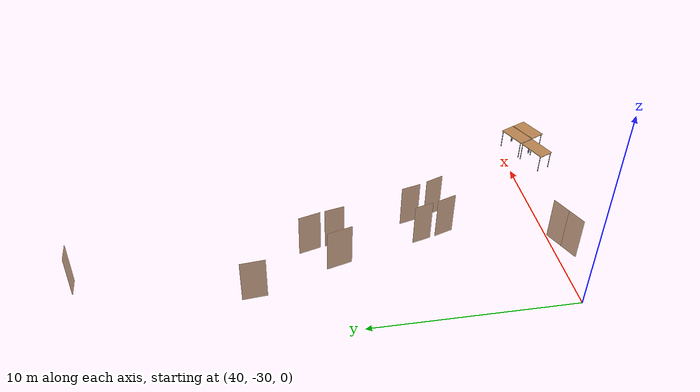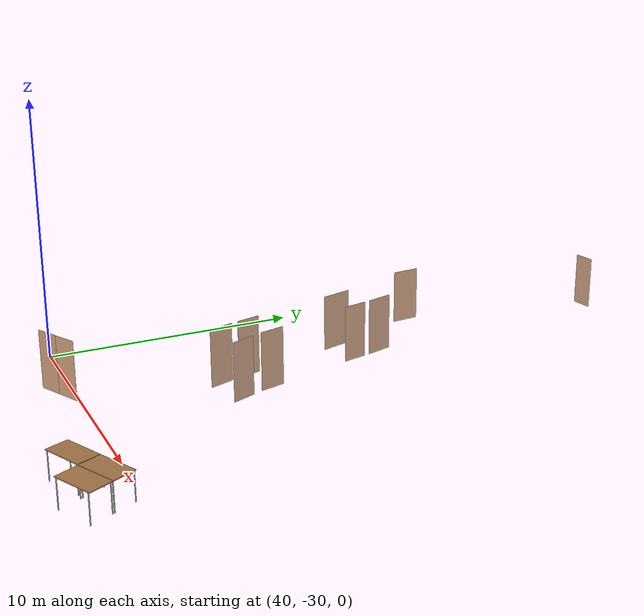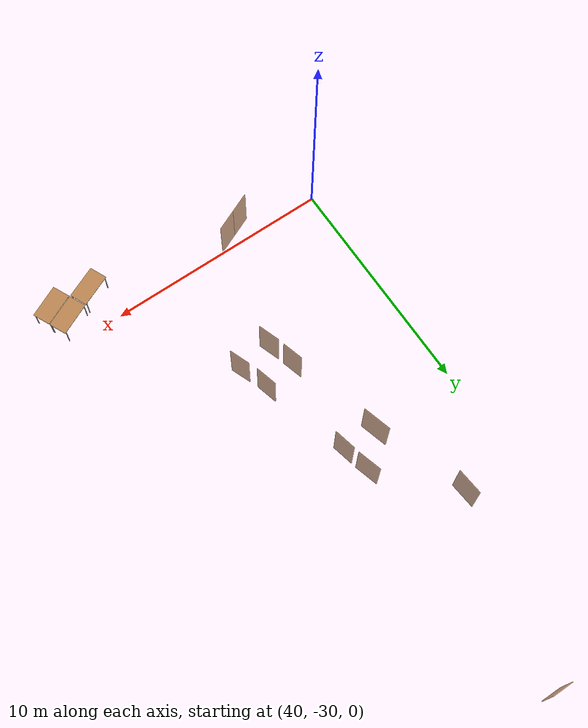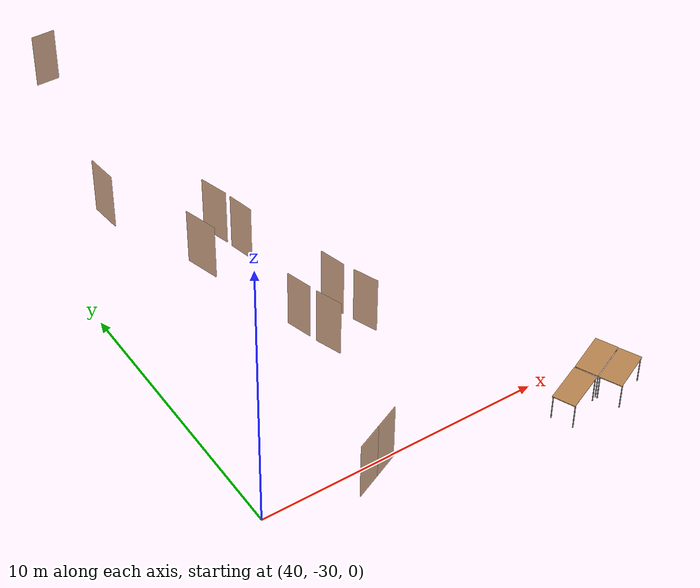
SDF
<sdf version="1.6">
 <world name="world">
  <model name="OpenRobotics/Table_4">
   <static>1</static>
   <link name="link">
    <collision name="surface">
     <pose>0 0 1 0 -0 0</pose>
     <geometry><box><size>1.5 0.8 0.03</size></box></geometry>
     <surface><friction><ode><mu>0.6</mu><mu2>0.6</mu2></ode></friction></surface>
    </collision>
    <visual name="visual1">
     <pose>0 0 1 0 -0 0</pose>
     <geometry><box><size>1.5 0.8 0.03</size></box></geometry>
     <material>
      <script><uri>file://media/materials/scripts/gazebo.material</uri><name>Gazebo/Wood</name></script>
     </material>
    </visual>
    <collision name="front_left_leg">
     <pose>0.68 0.38 0.5 0 -0 0</pose>
     <geometry><cylinder><radius>0.02</radius><length>1</length></cylinder></geometry>
    </collision>
    <visual name="front_left_leg">
     <pose>0.68 0.38 0.5 0 -0 0</pose>
     <geometry><cylinder><radius>0.02</radius><length>1</length></cylinder></geometry>
     <material>
      <script><uri>file://media/materials/scripts/gazebo.material</uri><name>Gazebo/Grey</name></script>
     </material>
    </visual>
    <collision name="front_right_leg">
     <pose>0.68 -0.38 0.5 0 -0 0</pose>
     <geometry><cylinder><radius>0.02</radius><length>1</length></cylinder></geometry>
    </collision>
    <visual name="front_right_leg">
     <pose>0.68 -0.38 0.5 0 -0 0</pose>
     <geometry><cylinder><radius>0.02</radius><length>1</length></cylinder></geometry>
     <material>
      <script><uri>file://media/materials/scripts/gazebo.material</uri><name>Gazebo/Grey</name></script>
     </material>
    </visual>
    <collision name="back_right_leg">
     <pose>-0.68 -0.38 0.5 0 -0 0</pose>
     <geometry><cylinder><radius>0.02</radius><length>1</length></cylinder></geometry>
    </collision>
    <visual name="back_right_leg">
     <pose>-0.68 -0.38 0.5 0 -0 0</pose>
     <geometry><cylinder><radius>0.02</radius><length>1</length></cylinder></geometry>
     <material>
      <script><uri>file://media/materials/scripts/gazebo.material</uri><name>Gazebo/Grey</name></script>
     </material>
    </visual>
    <collision name="back_left_leg">
     <pose>-0.68 0.38 0.5 0 -0 0</pose>
     <geometry><cylinder><radius>0.02</radius><length>1</length></cylinder></geometry>
    </collision>
    <visual name="back_left_leg">
     <pose>-0.68 0.38 0.5 0 -0 0</pose>
     <geometry><cylinder><radius>0.02</radius><length>1</length></cylinder></geometry>
     <material>
      <script><uri>file://media/materials/scripts/gazebo.material</uri><name>Gazebo/Grey</name></script>
     </material>
    </visual>
   </link>
   <pose>50.5168 -31.5278 0 0 -0 0.4167</pose>
  </model>
  <model name="OpenRobotics/Table_5">
   <static>1</static>
   <link name="link">
    <collision name="surface">
     <pose>0 0 1 0 -0 0</pose>
     <geometry><box><size>1.5 0.8 0.03</size></box></geometry>
     <surface><friction><ode><mu>0.6</mu><mu2>0.6</mu2></ode></friction></surface>
    </collision>
    <visual name="visual1">
     <pose>0 0 1 0 -0 0</pose>
     <geometry><box><size>1.5 0.8 0.03</size></box></geometry>
     <material>
      <script><uri>file://media/materials/scripts/gazebo.material</uri><name>Gazebo/Wood</name></script>
     </material>
    </visual>
    <collision name="front_left_leg">
     <pose>0.68 0.38 0.5 0 -0 0</pose>
     <geometry><cylinder><radius>0.02</radius><length>1</length></cylinder></geometry>
    </collision>
    <visual name="front_left_leg">
     <pose>0.68 0.38 0.5 0 -0 0</pose>
     <geometry><cylinder><radius>0.02</radius><length>1</length></cylinder></geometry>
     <material>
      <script><uri>file://media/materials/scripts/gazebo.material</uri><name>Gazebo/Grey</name></script>
     </material>
    </visual>
    <collision name="front_right_leg">
     <pose>0.68 -0.38 0.5 0 -0 0</pose>
     <geometry><cylinder><radius>0.02</radius><length>1</length></cylinder></geometry>
    </collision>
    <visual name="front_right_leg">
     <pose>0.68 -0.38 0.5 0 -0 0</pose>
     <geometry><cylinder><radius>0.02</radius><length>1</length></cylinder></geometry>
     <material>
      <script><uri>file://media/materials/scripts/gazebo.material</uri><name>Gazebo/Grey</name></script>
     </material>
    </visual>
    <collision name="back_right_leg">
     <pose>-0.68 -0.38 0.5 0 -0 0</pose>
     <geometry><cylinder><radius>0.02</radius><length>1</length></cylinder></geometry>
    </collision>
    <visual name="back_right_leg">
     <pose>-0.68 -0.38 0.5 0 -0 0</pose>
     <geometry><cylinder><radius>0.02</radius><length>1</length></cylinder></geometry>
     <material>
      <script><uri>file://media/materials/scripts/gazebo.material</uri><name>Gazebo/Grey</name></script>
     </material>
    </visual>
    <collision name="back_left_leg">
     <pose>-0.68 0.38 0.5 0 -0 0</pose>
     <geometry><cylinder><radius>0.02</radius><length>1</length></cylinder></geometry>
    </collision>
    <visual name="back_left_leg">
     <pose>-0.68 0.38 0.5 0 -0 0</pose>
     <geometry><cylinder><radius>0.02</radius><length>1</length></cylinder></geometry>
     <material>
      <script><uri>file://media/materials/scripts/gazebo.material</uri><name>Gazebo/Grey</name></script>
     </material>
    </visual>
   </link>
   <pose>51.9247 -30.8942 0 0 -0 0.4347</pose>
  </model>
  <model name="OpenRobotics/Table_6">
   <static>1</static>
   <link name="link">
    <collision name="surface">
     <pose>0 0 1 0 -0 0</pose>
     <geometry><box><size>1.5 0.8 0.03</size></box></geometry>
     <surface><friction><ode><mu>0.6</mu><mu2>0.6</mu2></ode></friction></surface>
    </collision>
    <visual name="visual1">
     <pose>0 0 1 0 -0 0</pose>
     <geometry><box><size>1.5 0.8 0.03</size></box></geometry>
     <material>
      <script><uri>file://media/materials/scripts/gazebo.material</uri><name>Gazebo/Wood</name></script>
     </material>
    </visual>
    <collision name="front_left_leg">
     <pose>0.68 0.38 0.5 0 -0 0</pose>
     <geometry><cylinder><radius>0.02</radius><length>1</length></cylinder></geometry>
    </collision>
    <visual name="front_left_leg">
     <pose>0.68 0.38 0.5 0 -0 0</pose>
     <geometry><cylinder><radius>0.02</radius><length>1</length></cylinder></geometry>
     <material>
      <script><uri>file://media/materials/scripts/gazebo.material</uri><name>Gazebo/Grey</name></script>
     </material>
    </visual>
    <collision name="front_right_leg">
     <pose>0.68 -0.38 0.5 0 -0 0</pose>
     <geometry><cylinder><radius>0.02</radius><length>1</length></cylinder></geometry>
    </collision>
    <visual name="front_right_leg">
     <pose>0.68 -0.38 0.5 0 -0 0</pose>
     <geometry><cylinder><radius>0.02</radius><length>1</length></cylinder></geometry>
     <material>
      <script><uri>file://media/materials/scripts/gazebo.material</uri><name>Gazebo/Grey</name></script>
     </material>
    </visual>
    <collision name="back_right_leg">
     <pose>-0.68 -0.38 0.5 0 -0 0</pose>
     <geometry><cylinder><radius>0.02</radius><length>1</length></cylinder></geometry>
    </collision>
    <visual name="back_right_leg">
     <pose>-0.68 -0.38 0.5 0 -0 0</pose>
     <geometry><cylinder><radius>0.02</radius><length>1</length></cylinder></geometry>
     <material>
      <script><uri>file://media/materials/scripts/gazebo.material</uri><name>Gazebo/Grey</name></script>
     </material>
    </visual>
    <collision name="back_left_leg">
     <pose>-0.68 0.38 0.5 0 -0 0</pose>
     <geometry><cylinder><radius>0.02</radius><length>1</length></cylinder></geometry>
    </collision>
    <visual name="back_left_leg">
     <pose>-0.68 0.38 0.5 0 -0 0</pose>
     <geometry><cylinder><radius>0.02</radius><length>1</length></cylinder></geometry>
     <material>
      <script><uri>file://media/materials/scripts/gazebo.material</uri><name>Gazebo/Grey</name></script>
     </material>
    </visual>
   </link>
   <pose>52.2667 -31.6485 0 0 -0 0.4389</pose>
  </model>
  <model name="D12">
   <pose>47.2222 -24.83 0 0 -0 -1.20677</pose>
   <link name="right">
    <pose>0 0 1.11 0 -0 0</pose>
    <visual name="right_visual">
     <geometry><box><size>0.929981 0.03 2.2</size></box></geometry>
     <material><ambient>0.5 0.25 0 0.6</ambient><diffuse>0.5 0.25 0 0.6</diffuse></material>
    </visual>
    <collision name="right_collision">
     <geometry><box><size>0.929981 0.03 2.2</size></box></geometry>
     <surface><contact><collide_bitmask>2</collide_bitmask></contact></surface>
    </collision>
    <inertial>
     <mass>50</mass>
     <inertia><ixx>20.1704</ixx><iyy>23.7703</iyy><izz>3.60736</izz><ixy>0</ixy><ixz>0</ixz><iyz>0</iyz></inertia>
    </inertial>
   </link>
   <joint name="right_joint" type="revolute">
    <parent>world</parent>
    <child>right</child>
    <axis>
     <xyz>0 0 1</xyz>
     <limit><lower>0</lower><upper>1.57</upper></limit>
     <dynamics><spring_reference>0</spring_reference><spring_stiffness>0</spring_stiffness></dynamics>
     <use_parent_model_frame>0</use_parent_model_frame>
    </axis>
    <pose>0.469991 0 0 0 -0 0</pose>
   </joint>
   <plugin name="door_D12" filename="libdoor.so">
    <v_max_door>0.5</v_max_door>
    <a_max_door>0.3</a_max_door>
    <a_nom_door>0.15</a_nom_door>
    <dx_min_door>0.01</dx_min_door>
    <f_max_door>500.0</f_max_door>
    <door name="D12" type="SwingDoor" left_joint_name="empty_joint" right_joint_name="right_joint"/>
   </plugin>
  </model>
  <model name="D13">
   <pose>46.7861 -23.541 -0 0 0 -1.31886</pose>
   <link name="right">
    <pose>0 0 1.11 0 -0 0</pose>
    <visual name="right_visual">
     <geometry><box><size>0.981892 0.03 2.2</size></box></geometry>
     <material><ambient>0.5 0.25 0 0.6</ambient><diffuse>0.5 0.25 0 0.6</diffuse></material>
    </visual>
    <collision name="right_collision">
     <geometry><box><size>0.981892 0.03 2.2</size></box></geometry>
     <surface><contact><collide_bitmask>2</collide_bitmask></contact></surface>
    </collision>
    <inertial>
     <mass>50</mass>
     <inertia><ixx>20.1704</ixx><iyy>24.1838</iyy><izz>4.02088</izz><ixy>0</ixy><ixz>0</ixz><iyz>0</iyz></inertia>
    </inertial>
   </link>
   <joint name="right_joint" type="revolute">
    <parent>world</parent>
    <child>right</child>
    <axis>
     <xyz>0 0 -1</xyz>
     <limit><lower>0</lower><upper>1.57</upper></limit>
     <dynamics><spring_reference>0</spring_reference><spring_stiffness>0</spring_stiffness></dynamics>
     <use_parent_model_frame>0</use_parent_model_frame>
    </axis>
    <pose>0.495946 0 0 0 -0 0</pose>
   </joint>
   <plugin name="door_D13" filename="libdoor.so">
    <v_max_door>0.5</v_max_door>
    <a_max_door>0.3</a_max_door>
    <a_nom_door>0.15</a_nom_door>
    <dx_min_door>0.01</dx_min_door>
    <f_max_door>500.0</f_max_door>
    <door name="D13" type="SwingDoor" left_joint_name="empty_joint" right_joint_name="right_joint"/>
   </plugin>
  </model>
  <model name="D14">
   <pose>45.7058 -19.5679 0 0 0 -1.3544</pose>
   <link name="right">
    <pose>0 0 1.11 0 -0 0</pose>
    <visual name="right_visual">
     <geometry><box><size>0.986867 0.03 2.2</size></box></geometry>
     <material><ambient>0.5 0.25 0 0.6</ambient><diffuse>0.5 0.25 0 0.6</diffuse></material>
    </visual>
    <collision name="right_collision">
     <geometry><box><size>0.986867 0.03 2.2</size></box></geometry>
     <surface><contact><collide_bitmask>2</collide_bitmask></contact></surface>
    </collision>
    <inertial>
     <mass>50</mass>
     <inertia><ixx>20.1704</ixx><iyy>24.2246</iyy><izz>4.0617</izz><ixy>0</ixy><ixz>0</ixz><iyz>0</iyz></inertia>
    </inertial>
   </link>
   <joint name="right_joint" type="revolute">
    <parent>world</parent>
    <child>right</child>
    <axis>
     <xyz>0 0 1</xyz>
     <limit><lower>0</lower><upper>1.57</upper></limit>
     <dynamics><spring_reference>0</spring_reference><spring_stiffness>0</spring_stiffness></dynamics>
     <use_parent_model_frame>0</use_parent_model_frame>
    </axis>
    <pose>0.498434 0 0 0 -0 0</pose>
   </joint>
   <plugin name="door_D14" filename="libdoor.so">
    <v_max_door>0.5</v_max_door>
    <a_max_door>0.3</a_max_door>
    <a_nom_door>0.15</a_nom_door>
    <dx_min_door>0.01</dx_min_door>
    <f_max_door>500.0</f_max_door>
    <door name="D14" type="SwingDoor" left_joint_name="empty_joint" right_joint_name="right_joint"/>
   </plugin>
  </model>
  <model name="D15">
   <pose>45.4079 -18.3231 0 0 -0 -1.29664</pose>
   <link name="right">
    <pose>0 0 1.11 0 -0 0</pose>
    <visual name="right_visual">
     <geometry><box><size>1.10514 0.03 2.2</size></box></geometry>
     <material><ambient>0.5 0.25 0 0.6</ambient><diffuse>0.5 0.25 0 0.6</diffuse></material>
    </visual>
    <collision name="right_collision">
     <geometry><box><size>1.10514 0.03 2.2</size></box></geometry>
     <surface><contact><collide_bitmask>2</collide_bitmask></contact></surface>
    </collision>
    <inertial>
     <mass>50</mass>
     <inertia><ixx>20.1704</ixx><iyy>25.2556</iyy><izz>5.09265</izz><ixy>0</ixy><ixz>0</ixz><iyz>0</iyz></inertia>
    </inertial>
   </link>
   <joint name="right_joint" type="revolute">
    <parent>world</parent>
    <child>right</child>
    <axis>
     <xyz>0 0 -1</xyz>
     <limit><lower>0</lower><upper>1.57</upper></limit>
     <dynamics><spring_reference>0</spring_reference><spring_stiffness>0</spring_stiffness></dynamics>
     <use_parent_model_frame>0</use_parent_model_frame>
    </axis>
    <pose>0.55757 0 0 0 -0 0</pose>
   </joint>
   <plugin name="door_D15" filename="libdoor.so">
    <v_max_door>0.5</v_max_door>
    <a_max_door>0.3</a_max_door>
    <a_nom_door>0.15</a_nom_door>
    <dx_min_door>0.01</dx_min_door>
    <f_max_door>500.0</f_max_door>
    <door name="D15" type="SwingDoor" left_joint_name="empty_joint" right_joint_name="right_joint"/>
   </plugin>
  </model>
  <model name="D16">
   <pose>42.6679 -15.4188 0 -0 -0 -1.47952</pose>
   <link name="right">
    <pose>0 0 1.11 0 -0 0</pose>
    <visual name="right_visual">
     <geometry><box><size>1.1816 0.03 2.2</size></box></geometry>
     <material><ambient>0.5 0.25 0 0.6</ambient><diffuse>0.5 0.25 0 0.6</diffuse></material>
    </visual>
    <collision name="right_collision">
     <geometry><box><size>1.1816 0.03 2.2</size></box></geometry>
     <surface><contact><collide_bitmask>2</collide_bitmask></contact></surface>
    </collision>
    <inertial>
     <mass>50</mass>
     <inertia><ixx>20.1704</ixx><iyy>25.9841</iyy><izz>5.82114</izz><ixy>0</ixy><ixz>0</ixz><iyz>0</iyz></inertia>
    </inertial>
   </link>
   <joint name="right_joint" type="revolute">
    <parent>world</parent>
    <child>right</child>
    <axis>
     <xyz>0 0 1</xyz>
     <limit><lower>0</lower><upper>1.57</upper></limit>
     <dynamics><spring_reference>0</spring_reference><spring_stiffness>0</spring_stiffness></dynamics>
     <use_parent_model_frame>0</use_parent_model_frame>
    </axis>
    <pose>0.595799 0 0 0 -0 0</pose>
   </joint>
   <plugin name="door_D16" filename="libdoor.so">
    <v_max_door>0.5</v_max_door>
    <a_max_door>0.3</a_max_door>
    <a_nom_door>0.15</a_nom_door>
    <dx_min_door>0.01</dx_min_door>
    <f_max_door>500.0</f_max_door>
    <door name="D16" type="SwingDoor" left_joint_name="empty_joint" right_joint_name="right_joint"/>
   </plugin>
  </model>
  <model name="D17">
   <pose>44.1506 -19.5573 -0 0 -0 1.84229</pose>
   <link name="right">
    <pose>0 0 1.11 0 -0 0</pose>
    <visual name="right_visual">
     <geometry><box><size>1.28448 0.03 2.2</size></box></geometry>
     <material><ambient>0.5 0.25 0 0.6</ambient><diffuse>0.5 0.25 0 0.6</diffuse></material>
    </visual>
    <collision name="right_collision">
     <geometry><box><size>1.28448 0.03 2.2</size></box></geometry>
     <surface><contact><collide_bitmask>2</collide_bitmask></contact></surface>
    </collision>
    <inertial>
     <mass>50</mass>
     <inertia><ixx>20.1704</ixx><iyy>27.0412</iyy><izz>6.87827</izz><ixy>0</ixy><ixz>0</ixz><iyz>0</iyz></inertia>
    </inertial>
   </link>
   <joint name="right_joint" type="revolute">
    <parent>world</parent>
    <child>right</child>
    <axis>
     <xyz>0 0 -1</xyz>
     <limit><lower>0</lower><upper>1.57</upper></limit>
     <dynamics><spring_reference>0</spring_reference><spring_stiffness>0</spring_stiffness></dynamics>
     <use_parent_model_frame>0</use_parent_model_frame>
    </axis>
    <pose>0.647239 0 0 0 -0 0</pose>
   </joint>
   <plugin name="door_D17" filename="libdoor.so">
    <v_max_door>0.5</v_max_door>
    <a_max_door>0.3</a_max_door>
    <a_nom_door>0.15</a_nom_door>
    <dx_min_door>0.01</dx_min_door>
    <f_max_door>500.0</f_max_door>
    <door name="D17" type="SwingDoor" left_joint_name="empty_joint" right_joint_name="right_joint"/>
   </plugin>
  </model>
  <model name="D18">
   <pose>45.2939 -23.8308 0 0 -0 1.84233</pose>
   <link name="right">
    <pose>0 0 1.11 0 -0 0</pose>
    <visual name="right_visual">
     <geometry><box><size>0.954162 0.03 2.2</size></box></geometry>
     <material><ambient>0.5 0.25 0 0.6</ambient><diffuse>0.5 0.25 0 0.6</diffuse></material>
    </visual>
    <collision name="right_collision">
     <geometry><box><size>0.954162 0.03 2.2</size></box></geometry>
     <surface><contact><collide_bitmask>2</collide_bitmask></contact></surface>
    </collision>
    <inertial>
     <mass>50</mass>
     <inertia><ixx>20.1704</ixx><iyy>23.9601</iyy><izz>3.79719</izz><ixy>0</ixy><ixz>0</ixz><iyz>0</iyz></inertia>
    </inertial>
   </link>
   <joint name="right_joint" type="revolute">
    <parent>world</parent>
    <child>right</child>
    <axis>
     <xyz>0 0 1</xyz>
     <limit><lower>0</lower><upper>1.57</upper></limit>
     <dynamics><spring_reference>0</spring_reference><spring_stiffness>0</spring_stiffness></dynamics>
     <use_parent_model_frame>0</use_parent_model_frame>
    </axis>
    <pose>0.482081 0 0 0 -0 0</pose>
   </joint>
   <plugin name="door_D18" filename="libdoor.so">
    <v_max_door>0.5</v_max_door>
    <a_max_door>0.3</a_max_door>
    <a_nom_door>0.15</a_nom_door>
    <dx_min_door>0.01</dx_min_door>
    <f_max_door>500.0</f_max_door>
    <door name="D18" type="SwingDoor" left_joint_name="empty_joint" right_joint_name="right_joint"/>
   </plugin>
  </model>
  <model name="D19">
   <pose>45.6474 -25.0325 0 0 -0 1.90388</pose>
   <link name="right">
    <pose>0 0 1.11 0 -0 0</pose>
    <visual name="right_visual">
     <geometry><box><size>0.992411 0.03 2.2</size></box></geometry>
     <material><ambient>0.5 0.25 0 0.6</ambient><diffuse>0.5 0.25 0 0.6</diffuse></material>
    </visual>
    <collision name="right_collision">
     <geometry><box><size>0.992411 0.03 2.2</size></box></geometry>
     <surface><contact><collide_bitmask>2</collide_bitmask></contact></surface>
    </collision>
    <inertial>
     <mass>50</mass>
     <inertia><ixx>20.1704</ixx><iyy>24.2703</iyy><izz>4.10741</izz><ixy>0</ixy><ixz>0</ixz><iyz>0</iyz></inertia>
    </inertial>
   </link>
   <joint name="right_joint" type="revolute">
    <parent>world</parent>
    <child>right</child>
    <axis>
     <xyz>0 0 -1</xyz>
     <limit><lower>0</lower><upper>1.57</upper></limit>
     <dynamics><spring_reference>0</spring_reference><spring_stiffness>0</spring_stiffness></dynamics>
     <use_parent_model_frame>0</use_parent_model_frame>
    </axis>
    <pose>0.501205 0 0 0 -0 0</pose>
   </joint>
   <plugin name="door_D19" filename="libdoor.so">
    <v_max_door>0.5</v_max_door>
    <a_max_door>0.3</a_max_door>
    <a_nom_door>0.15</a_nom_door>
    <dx_min_door>0.01</dx_min_door>
    <f_max_door>500.0</f_max_door>
    <door name="D19" type="SwingDoor" left_joint_name="empty_joint" right_joint_name="right_joint"/>
   </plugin>
  </model>
  <model name="D30">
   <pose>44.6125 -7.19108 0 0 -0 3.14098</pose>
   <link name="right">
    <pose>0 0 1.11 0 -0 0</pose>
    <visual name="right_visual">
     <geometry><box><size>0.913281 0.03 2.2</size></box></geometry>
     <material><ambient>0.5 0.25 0 0.6</ambient><diffuse>0.5 0.25 0 0.6</diffuse></material>
    </visual>
    <collision name="right_collision">
     <geometry><box><size>0.913281 0.03 2.2</size></box></geometry>
     <surface><contact><collide_bitmask>2</collide_bitmask></contact></surface>
    </collision>
    <inertial>
     <mass>50</mass>
     <inertia><ixx>20.1704</ixx><iyy>23.642</iyy><izz>3.47909</izz><ixy>0</ixy><ixz>0</ixz><iyz>0</iyz></inertia>
    </inertial>
   </link>
   <joint name="right_joint" type="revolute">
    <parent>world</parent>
    <child>right</child>
    <axis>
     <xyz>0 0 1</xyz>
     <limit><lower>0</lower><upper>1.57</upper></limit>
     <dynamics><spring_reference>0</spring_reference><spring_stiffness>0</spring_stiffness></dynamics>
     <use_parent_model_frame>0</use_parent_model_frame>
    </axis>
    <pose>0.461641 0 0 0 -0 0</pose>
   </joint>
   <plugin name="door_D30" filename="libdoor.so">
    <v_max_door>0.5</v_max_door>
    <a_max_door>0.3</a_max_door>
    <a_nom_door>0.15</a_nom_door>
    <dx_min_door>0.01</dx_min_door>
    <f_max_door>500.0</f_max_door>
    <door name="D30" type="SwingDoor" left_joint_name="empty_joint" right_joint_name="right_joint"/>
   </plugin>
  </model>
  <model name="DH3">
   <pose>43.8118 -30.4679 0 0 0 -2.72084</pose>
   <link name="right">
    <pose>0.481649 0 1.11 0 -0 0</pose>
    <visual name="right_visual">
     <geometry><box><size>0.953298 0.03 2.2</size></box></geometry>
     <material><ambient>0.5 0.25 0 0.6</ambient><diffuse>0.5 0.25 0 0.6</diffuse></material>
    </visual>
    <collision name="right_collision">
     <geometry><box><size>0.953298 0.03 2.2</size></box></geometry>
     <surface><contact><collide_bitmask>2</collide_bitmask></contact></surface>
    </collision>
    <inertial>
     <mass>50</mass>
     <inertia><ixx>20.1704</ixx><iyy>23.9532</iyy><izz>3.79032</izz><ixy>0</ixy><ixz>0</ixz><iyz>0</iyz></inertia>
    </inertial>
   </link>
   <joint name="right_joint" type="revolute">
    <parent>world</parent>
    <child>right</child>
    <axis>
     <xyz>0 0 -1</xyz>
     <limit><lower>0</lower><upper>1.57</upper></limit>
     <dynamics><spring_reference>0</spring_reference><spring_stiffness>0</spring_stiffness></dynamics>
     <use_parent_model_frame>0</use_parent_model_frame>
    </axis>
    <pose>0.481649 0 0 0 -0 0</pose>
   </joint>
   <link name="left">
    <pose>-0.481649 0 1.11 0 -0 0</pose>
    <visual name="left_visual">
     <geometry><box><size>0.953298 0.03 2.2</size></box></geometry>
     <material><ambient>0.5 0.25 0 0.6</ambient><diffuse>0.5 0.25 0 0.6</diffuse></material>
    </visual>
    <collision name="left_collision">
     <geometry><box><size>0.953298 0.03 2.2</size></box></geometry>
     <surface><contact><collide_bitmask>2</collide_bitmask></contact></surface>
    </collision>
    <inertial>
     <mass>50</mass>
     <inertia><ixx>20.1704</ixx><iyy>23.9532</iyy><izz>3.79032</izz><ixy>0</ixy><ixz>0</ixz><iyz>0</iyz></inertia>
    </inertial>
   </link>
   <joint name="left_joint" type="revolute">
    <parent>world</parent>
    <child>left</child>
    <axis>
     <xyz>0 0 -1</xyz>
     <limit><lower>-1.57</lower><upper>0</upper></limit>
     <dynamics><spring_reference>0</spring_reference><spring_stiffness>0</spring_stiffness></dynamics>
     <use_parent_model_frame>0</use_parent_model_frame>
    </axis>
    <pose>-0.481649 0 0 0 -0 0</pose>
   </joint>
   <plugin name="door_DH3" filename="libdoor.so">
    <v_max_door>0.5</v_max_door>
    <a_max_door>0.3</a_max_door>
    <a_nom_door>0.15</a_nom_door>
    <dx_min_door>0.01</dx_min_door>
    <f_max_door>500.0</f_max_door>
    <door name="DH3" type="DoubleSwingDoor" left_joint_name="left_joint" right_joint_name="right_joint"/>
   </plugin>
  </model>
 </world>
</sdf>
